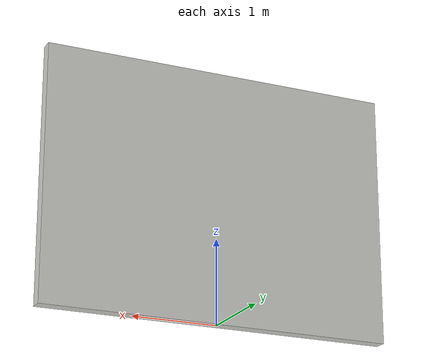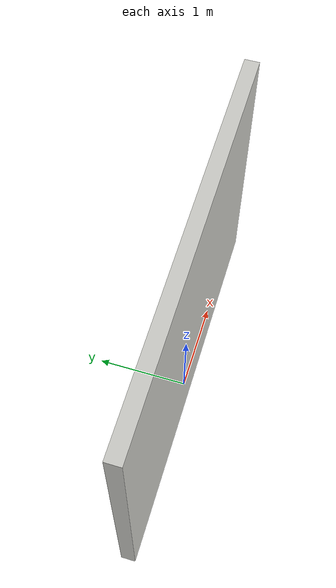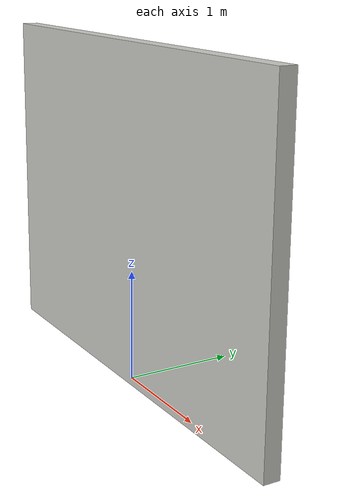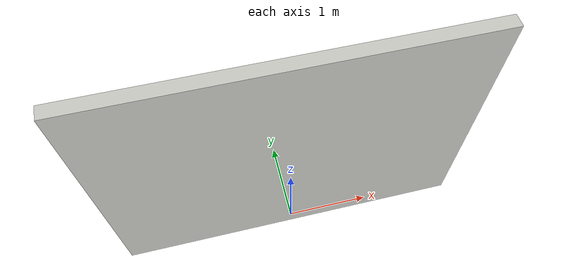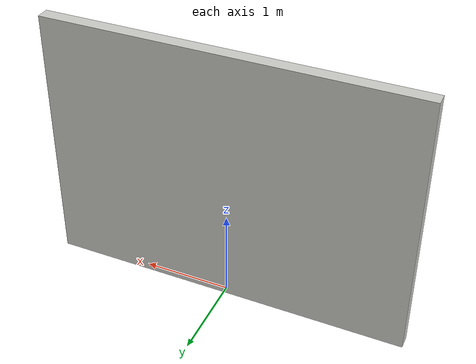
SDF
<?xml version='1.0'?>
<sdf version='1.6'>
  <model name='4m_wall_new'>
    <link name='Wall_0'>
      <collision name='4m_wall_newc'>
        <geometry>
          <box>
            <size>4.15 0.15 3</size>
          </box>
        </geometry>
        <pose frame=''>0 0 1.5 0 -0 0</pose>
      </collision>
      <visual name='4m_wall_newv'>
        <pose frame=''>0 0 1.5 0 -0 0</pose>
        <geometry>
          <box>
            <size>4.15 0.15 3</size>
          </box>
        </geometry>
        <material>
          <script>
            <uri>file://media/materials/scripts/gazebo.material</uri>
            <name>Gazebo/CeilingTiled</name>
          </script>
          <ambient>1 1 1 1</ambient>
        </material>
        <meta>
          <layer>0</layer>
        </meta>
      </visual>
      <pose frame=''>0 0 0 0 -0 0</pose>
    </link>
    <static>1</static>
  </model>
</sdf>
